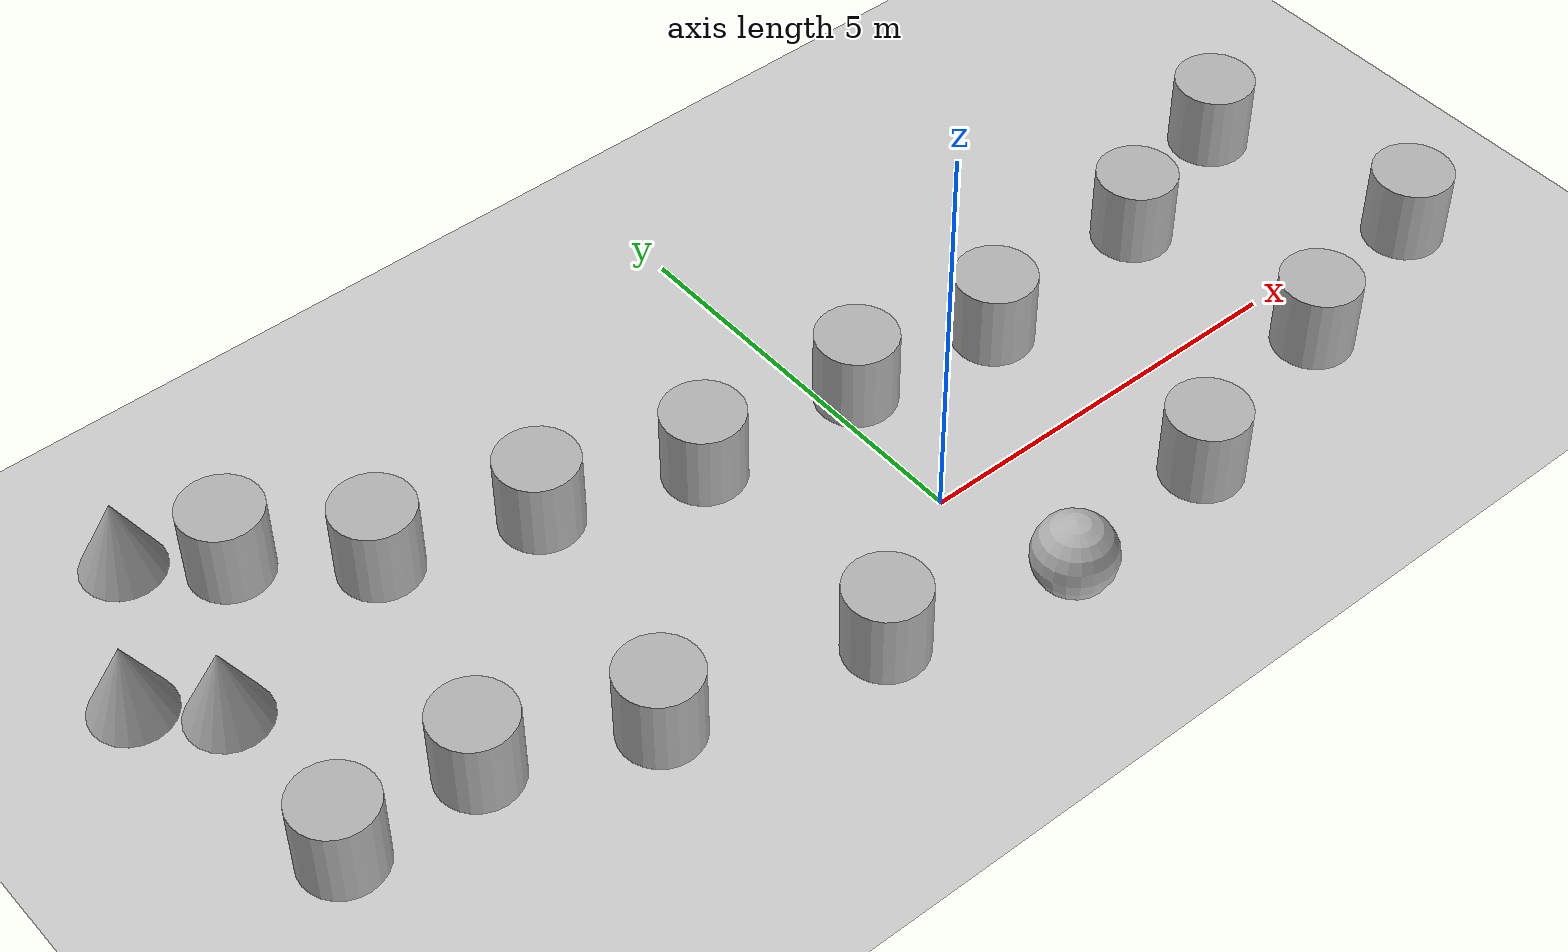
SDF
<sdf version='1.10'>
  <world name='empty'>
    <physics name='1ms' type='ignored'>
      <max_step_size>0.008</max_step_size>
      <real_time_factor>1</real_time_factor>
      <real_time_update_rate>1000</real_time_update_rate>
    </physics>
    <plugin name='gz::sim::systems::Physics' filename='gz-sim-physics-system'/>
    <plugin name='gz::sim::systems::UserCommands' filename='gz-sim-user-commands-system'/>
    <plugin name='gz::sim::systems::SceneBroadcaster' filename='gz-sim-scene-broadcaster-system'/>
    <plugin name='gz::sim::systems::Sensors' filename='gz-sim-sensors-system'>
      <render_engine>ogre2</render_engine>
    </plugin>
    <plugin name='gz::sim::systems::Contact' filename='gz-sim-contact-system'/>
    <gravity>0 0 -9.8000000000000007</gravity>
    <magnetic_field>5.5644999999999998e-06 2.2875799999999999e-05 -4.2388400000000002e-05</magnetic_field>
    <atmosphere type='adiabatic'/>
    <scene>
      <ambient>0.400000006 0.400000006 0.400000006 1</ambient>
      <background>0.699999988 0.699999988 0.699999988 1</background>
      <shadows>true</shadows>
    </scene>
    <model name='ground_plane'>
      <static>true</static>
      <link name='link'>
        <collision name='collision'>
          <geometry>
            <plane>
              <normal>0 0 1</normal>
              <size>100 100</size>
            </plane>
          </geometry>
          <surface>
            <friction>
              <ode/>
            </friction>
            <bounce/>
            <contact/>
          </surface>
        </collision>
        <visual name='visual'>
          <geometry>
            <plane>
              <normal>0 0 1</normal>
              <size>100 100</size>
            </plane>
          </geometry>
          <material>
            <ambient>0.800000012 0.800000012 0.800000012 1</ambient>
            <diffuse>0.800000012 0.800000012 0.800000012 1</diffuse>
            <specular>0.800000012 0.800000012 0.800000012 1</specular>
          </material>
        </visual>
        <pose>0 0 0 0 0 0</pose>
        <inertial>
          <pose>0 0 0 0 0 0</pose>
          <mass>1</mass>
          <inertia>
            <ixx>1</ixx>
            <ixy>0</ixy>
            <ixz>0</ixz>
            <iyy>1</iyy>
            <iyz>0</iyz>
            <izz>1</izz>
          </inertia>
        </inertial>
        <enable_wind>false</enable_wind>
      </link>
      <pose>0 0 0 0 0 0</pose>
      <self_collide>false</self_collide>
    </model>
    <model name='cylinder'>
      <pose>2.2499863101527513 1.595018920893533 0.49999947985226895 2.3881663558217525e-17 -1.5939603903663701e-17 4.5562128326621645e-19</pose>
      <link name='cylinder_link'>
        <inertial>
          <inertia>
            <ixx>0.14580000000000001</ixx>
            <ixy>0</ixy>
            <ixz>0</ixz>
            <iyy>0.14580000000000001</iyy>
            <iyz>0</iyz>
            <izz>0.125</izz>
          </inertia>
          <mass>1</mass>
          <pose>0 0 0 0 0 0</pose>
        </inertial>
        <collision name='cylinder_collision'>
          <geometry>
            <cylinder>
              <radius>0.5</radius>
              <length>1</length>
            </cylinder>
          </geometry>
          <surface>
            <friction>
              <ode/>
            </friction>
            <bounce/>
            <contact/>
          </surface>
        </collision>
        <visual name='cylinder_visual'>
          <geometry>
            <cylinder>
              <radius>0.5</radius>
              <length>1</length>
            </cylinder>
          </geometry>
          <material>
            <ambient>0.300000012 0.300000012 0.300000012 1</ambient>
            <diffuse>0.699999988 0.699999988 0.699999988 1</diffuse>
            <specular>1 1 1 1</specular>
          </material>
        </visual>
        <pose>0 0 0 0 0 0</pose>
        <enable_wind>false</enable_wind>
      </link>
      <static>false</static>
      <self_collide>false</self_collide>
    </model>
    <model name='cylinder_0'>
      <pose>0.36766696744877869 1.8762902755530619 0.49999947985226895 1.6217630503729115e-17 2.648696777790775e-17 1.1095014787820075e-18</pose>
      <link name='cylinder_link'>
        <inertial>
          <inertia>
            <ixx>0.14580000000000001</ixx>
            <ixy>0</ixy>
            <ixz>0</ixz>
            <iyy>0.14580000000000001</iyy>
            <iyz>0</iyz>
            <izz>0.125</izz>
          </inertia>
          <mass>1</mass>
          <pose>0 0 0 0 0 0</pose>
        </inertial>
        <collision name='cylinder_collision'>
          <geometry>
            <cylinder>
              <radius>0.5</radius>
              <length>1</length>
            </cylinder>
          </geometry>
          <surface>
            <friction>
              <ode/>
            </friction>
            <bounce/>
            <contact/>
          </surface>
        </collision>
        <visual name='cylinder_visual'>
          <geometry>
            <cylinder>
              <radius>0.5</radius>
              <length>1</length>
            </cylinder>
          </geometry>
          <material>
            <ambient>0.300000012 0.300000012 0.300000012 1</ambient>
            <diffuse>0.699999988 0.699999988 0.699999988 1</diffuse>
            <specular>1 1 1 1</specular>
          </material>
        </visual>
        <pose>0 0 0 0 0 0</pose>
        <enable_wind>false</enable_wind>
      </link>
      <static>false</static>
      <self_collide>false</self_collide>
    </model>
    <model name='cylinder_1'>
      <pose>-1.7348720169636582 2.0484545725794123 0.49999947985226895 -7.8166408572051911e-18 -5.1302124631653502e-18 -1.5609185590258706e-18</pose>
      <link name='cylinder_link'>
        <inertial>
          <inertia>
            <ixx>0.14580000000000001</ixx>
            <ixy>0</ixy>
            <ixz>0</ixz>
            <iyy>0.14580000000000001</iyy>
            <iyz>0</iyz>
            <izz>0.125</izz>
          </inertia>
          <mass>1</mass>
          <pose>0 0 0 0 0 0</pose>
        </inertial>
        <collision name='cylinder_collision'>
          <geometry>
            <cylinder>
              <radius>0.5</radius>
              <length>1</length>
            </cylinder>
          </geometry>
          <surface>
            <friction>
              <ode/>
            </friction>
            <bounce/>
            <contact/>
          </surface>
        </collision>
        <visual name='cylinder_visual'>
          <geometry>
            <cylinder>
              <radius>0.5</radius>
              <length>1</length>
            </cylinder>
          </geometry>
          <material>
            <ambient>0.300000012 0.300000012 0.300000012 1</ambient>
            <diffuse>0.699999988 0.699999988 0.699999988 1</diffuse>
            <specular>1 1 1 1</specular>
          </material>
        </visual>
        <pose>0 0 0 0 0 0</pose>
        <enable_wind>false</enable_wind>
      </link>
      <static>false</static>
      <self_collide>false</self_collide>
    </model>
    <model name='cylinder_2'>
      <pose>4.7557521429729688 1.8144450784627419 0.49999963081747861 1.0743487045557161e-10 7.9476920442039657e-11 1.2790752321164944e-08</pose>
      <link name='cylinder_link'>
        <inertial>
          <inertia>
            <ixx>0.14580000000000001</ixx>
            <ixy>0</ixy>
            <ixz>0</ixz>
            <iyy>0.14580000000000001</iyy>
            <iyz>0</iyz>
            <izz>0.125</izz>
          </inertia>
          <mass>1</mass>
          <pose>0 0 0 0 0 0</pose>
        </inertial>
        <collision name='cylinder_collision'>
          <geometry>
            <cylinder>
              <radius>0.5</radius>
              <length>1</length>
            </cylinder>
          </geometry>
          <surface>
            <friction>
              <ode/>
            </friction>
            <bounce/>
            <contact/>
          </surface>
        </collision>
        <visual name='cylinder_visual'>
          <geometry>
            <cylinder>
              <radius>0.5</radius>
              <length>1</length>
            </cylinder>
          </geometry>
          <material>
            <ambient>0.300000012 0.300000012 0.300000012 1</ambient>
            <diffuse>0.699999988 0.699999988 0.699999988 1</diffuse>
            <specular>1 1 1 1</specular>
          </material>
        </visual>
        <pose>0 0 0 0 0 0</pose>
        <enable_wind>false</enable_wind>
      </link>
      <static>false</static>
      <self_collide>false</self_collide>
    </model>
    <model name='cylinder_3'>
      <pose>-3.5658479179048932 2.656371369886072 0.49999947985226889 1.4250658289572858e-17 -3.6798342673145309e-18 -1.5223656363069825e-18</pose>
      <link name='cylinder_link'>
        <inertial>
          <inertia>
            <ixx>0.14580000000000001</ixx>
            <ixy>0</ixy>
            <ixz>0</ixz>
            <iyy>0.14580000000000001</iyy>
            <iyz>0</iyz>
            <izz>0.125</izz>
          </inertia>
          <mass>1</mass>
          <pose>0 0 0 0 0 0</pose>
        </inertial>
        <collision name='cylinder_collision'>
          <geometry>
            <cylinder>
              <radius>0.5</radius>
              <length>1</length>
            </cylinder>
          </geometry>
          <surface>
            <friction>
              <ode/>
            </friction>
            <bounce/>
            <contact/>
          </surface>
        </collision>
        <visual name='cylinder_visual'>
          <geometry>
            <cylinder>
              <radius>0.5</radius>
              <length>1</length>
            </cylinder>
          </geometry>
          <material>
            <ambient>0.300000012 0.300000012 0.300000012 1</ambient>
            <diffuse>0.699999988 0.699999988 0.699999988 1</diffuse>
            <specular>1 1 1 1</specular>
          </material>
        </visual>
        <pose>0 0 0 0 0 0</pose>
        <enable_wind>false</enable_wind>
      </link>
      <static>false</static>
      <self_collide>false</self_collide>
    </model>
    <model name='cylinder_4'>
      <pose>-4.3958162363230411 -0.52994371349131675 0.49999947985226895 3.3547511201492961e-18 -1.193086293552384e-17 -7.2278699720692598e-19</pose>
      <link name='cylinder_link'>
        <inertial>
          <inertia>
            <ixx>0.14580000000000001</ixx>
            <ixy>0</ixy>
            <ixz>0</ixz>
            <iyy>0.14580000000000001</iyy>
            <iyz>0</iyz>
            <izz>0.125</izz>
          </inertia>
          <mass>1</mass>
          <pose>0 0 0 0 0 0</pose>
        </inertial>
        <collision name='cylinder_collision'>
          <geometry>
            <cylinder>
              <radius>0.5</radius>
              <length>1</length>
            </cylinder>
          </geometry>
          <surface>
            <friction>
              <ode/>
            </friction>
            <bounce/>
            <contact/>
          </surface>
        </collision>
        <visual name='cylinder_visual'>
          <geometry>
            <cylinder>
              <radius>0.5</radius>
              <length>1</length>
            </cylinder>
          </geometry>
          <material>
            <ambient>0.300000012 0.300000012 0.300000012 1</ambient>
            <diffuse>0.699999988 0.699999988 0.699999988 1</diffuse>
            <specular>1 1 1 1</specular>
          </material>
        </visual>
        <pose>0 0 0 0 0 0</pose>
        <enable_wind>false</enable_wind>
      </link>
      <static>false</static>
      <self_collide>false</self_collide>
    </model>
    <model name='cylinder_5'>
      <pose>-1.8713308214083781 -1.1876177281501499 0.49999947985226895 -3.8829490701928059e-18 2.6102993994865445e-18 8.7112110690941823e-19</pose>
      <link name='cylinder_link'>
        <inertial>
          <inertia>
            <ixx>0.14580000000000001</ixx>
            <ixy>0</ixy>
            <ixz>0</ixz>
            <iyy>0.14580000000000001</iyy>
            <iyz>0</iyz>
            <izz>0.125</izz>
          </inertia>
          <mass>1</mass>
          <pose>0 0 0 0 0 0</pose>
        </inertial>
        <collision name='cylinder_collision'>
          <geometry>
            <cylinder>
              <radius>0.5</radius>
              <length>1</length>
            </cylinder>
          </geometry>
          <surface>
            <friction>
              <ode/>
            </friction>
            <bounce/>
            <contact/>
          </surface>
        </collision>
        <visual name='cylinder_visual'>
          <geometry>
            <cylinder>
              <radius>0.5</radius>
              <length>1</length>
            </cylinder>
          </geometry>
          <material>
            <ambient>0.300000012 0.300000012 0.300000012 1</ambient>
            <diffuse>0.699999988 0.699999988 0.699999988 1</diffuse>
            <specular>1 1 1 1</specular>
          </material>
        </visual>
        <pose>0 0 0 0 0 0</pose>
        <enable_wind>false</enable_wind>
      </link>
      <static>false</static>
      <self_collide>false</self_collide>
    </model>
    <model name='sphere'>
      <pose>0.27550967224271972 -1.8154389348107967 0.49999999647085919 0 0 0</pose>
      <link name='sphere_link'>
        <inertial>
          <inertia>
            <ixx>0.10000000000000001</ixx>
            <ixy>0</ixy>
            <ixz>0</ixz>
            <iyy>0.10000000000000001</iyy>
            <iyz>0</iyz>
            <izz>0.10000000000000001</izz>
          </inertia>
          <mass>1</mass>
          <pose>0 0 0 0 0 0</pose>
        </inertial>
        <collision name='sphere_collision'>
          <geometry>
            <sphere>
              <radius>0.5</radius>
            </sphere>
          </geometry>
          <surface>
            <friction>
              <ode/>
            </friction>
            <bounce/>
            <contact/>
          </surface>
        </collision>
        <visual name='sphere_visual'>
          <geometry>
            <sphere>
              <radius>0.5</radius>
            </sphere>
          </geometry>
          <material>
            <ambient>0.300000012 0.300000012 0.300000012 1</ambient>
            <diffuse>0.699999988 0.699999988 0.699999988 1</diffuse>
            <specular>1 1 1 1</specular>
          </material>
        </visual>
        <pose>0 0 0 0 0 0</pose>
        <enable_wind>false</enable_wind>
      </link>
      <static>false</static>
      <self_collide>false</self_collide>
    </model>
    <model name='cylinder_6'>
      <pose>2.5635178272517898 -1.5293029172495756 0.49999947985226895 -9.662447727530514e-18 -8.6795932505375381e-18 -8.4847856208733708e-19</pose>
      <link name='cylinder_link'>
        <inertial>
          <inertia>
            <ixx>0.14580000000000001</ixx>
            <ixy>0</ixy>
            <ixz>0</ixz>
            <iyy>0.14580000000000001</iyy>
            <iyz>0</iyz>
            <izz>0.125</izz>
          </inertia>
          <mass>1</mass>
          <pose>0 0 0 0 0 0</pose>
        </inertial>
        <collision name='cylinder_collision'>
          <geometry>
            <cylinder>
              <radius>0.5</radius>
              <length>1</length>
            </cylinder>
          </geometry>
          <surface>
            <friction>
              <ode/>
            </friction>
            <bounce/>
            <contact/>
          </surface>
        </collision>
        <visual name='cylinder_visual'>
          <geometry>
            <cylinder>
              <radius>0.5</radius>
              <length>1</length>
            </cylinder>
          </geometry>
          <material>
            <ambient>0.300000012 0.300000012 0.300000012 1</ambient>
            <diffuse>0.699999988 0.699999988 0.699999988 1</diffuse>
            <specular>1 1 1 1</specular>
          </material>
        </visual>
        <pose>0 0 0 0 0 0</pose>
        <enable_wind>false</enable_wind>
      </link>
      <static>false</static>
      <self_collide>false</self_collide>
    </model>
    <model name='cylinder_7'>
      <pose>5.0817338942821948 -0.87209074524719854 0.49999947985226895 -2.9489444128448754e-17 -8.6688149438977794e-18 -5.5638481062966557e-19</pose>
      <link name='cylinder_link'>
        <inertial>
          <inertia>
            <ixx>0.14580000000000001</ixx>
            <ixy>0</ixy>
            <ixz>0</ixz>
            <iyy>0.14580000000000001</iyy>
            <iyz>0</iyz>
            <izz>0.125</izz>
          </inertia>
          <mass>1</mass>
          <pose>0 0 0 0 0 0</pose>
        </inertial>
        <collision name='cylinder_collision'>
          <geometry>
            <cylinder>
              <radius>0.5</radius>
              <length>1</length>
            </cylinder>
          </geometry>
          <surface>
            <friction>
              <ode/>
            </friction>
            <bounce/>
            <contact/>
          </surface>
        </collision>
        <visual name='cylinder_visual'>
          <geometry>
            <cylinder>
              <radius>0.5</radius>
              <length>1</length>
            </cylinder>
          </geometry>
          <material>
            <ambient>0.300000012 0.300000012 0.300000012 1</ambient>
            <diffuse>0.699999988 0.699999988 0.699999988 1</diffuse>
            <specular>1 1 1 1</specular>
          </material>
        </visual>
        <pose>0 0 0 0 0 0</pose>
        <enable_wind>false</enable_wind>
      </link>
      <static>false</static>
      <self_collide>false</self_collide>
    </model>
    <model name='cylinder_8'>
      <pose>6.7330601783698292 2.4538196059467383 0.49999947985226895 4.753500480616779e-19 2.5544602729384372e-18 -1.6751868155691134e-18</pose>
      <link name='cylinder_link'>
        <inertial>
          <inertia>
            <ixx>0.14580000000000001</ixx>
            <ixy>0</ixy>
            <ixz>0</ixz>
            <iyy>0.14580000000000001</iyy>
            <iyz>0</iyz>
            <izz>0.125</izz>
          </inertia>
          <mass>1</mass>
          <pose>0 0 0 0 0 0</pose>
        </inertial>
        <collision name='cylinder_collision'>
          <geometry>
            <cylinder>
              <radius>0.5</radius>
              <length>1</length>
            </cylinder>
          </geometry>
          <surface>
            <friction>
              <ode/>
            </friction>
            <bounce/>
            <contact/>
          </surface>
        </collision>
        <visual name='cylinder_visual'>
          <geometry>
            <cylinder>
              <radius>0.5</radius>
              <length>1</length>
            </cylinder>
          </geometry>
          <material>
            <ambient>0.300000012 0.300000012 0.300000012 1</ambient>
            <diffuse>0.699999988 0.699999988 0.699999988 1</diffuse>
            <specular>1 1 1 1</specular>
          </material>
        </visual>
        <pose>0 0 0 0 0 0</pose>
        <enable_wind>false</enable_wind>
      </link>
      <static>false</static>
      <self_collide>false</self_collide>
    </model>
    <model name='cylinder_9'>
      <pose>7.3102340665665118 -0.28504944576133551 0.49999947985226895 6.7441825128584643e-18 -3.5718128849770119e-17 -2.7708671495614089e-18</pose>
      <link name='cylinder_link'>
        <inertial>
          <inertia>
            <ixx>0.14580000000000001</ixx>
            <ixy>0</ixy>
            <ixz>0</ixz>
            <iyy>0.14580000000000001</iyy>
            <iyz>0</iyz>
            <izz>0.125</izz>
          </inertia>
          <mass>1</mass>
          <pose>0 0 0 0 0 0</pose>
        </inertial>
        <collision name='cylinder_collision'>
          <geometry>
            <cylinder>
              <radius>0.5</radius>
              <length>1</length>
            </cylinder>
          </geometry>
          <surface>
            <friction>
              <ode/>
            </friction>
            <bounce/>
            <contact/>
          </surface>
        </collision>
        <visual name='cylinder_visual'>
          <geometry>
            <cylinder>
              <radius>0.5</radius>
              <length>1</length>
            </cylinder>
          </geometry>
          <material>
            <ambient>0.300000012 0.300000012 0.300000012 1</ambient>
            <diffuse>0.699999988 0.699999988 0.699999988 1</diffuse>
            <specular>1 1 1 1</specular>
          </material>
        </visual>
        <pose>0 0 0 0 0 0</pose>
        <enable_wind>false</enable_wind>
      </link>
      <static>false</static>
      <self_collide>false</self_collide>
    </model>
    <model name='cylinder_10'>
      <pose>-5.3310831631932167 3.228119608909096 0.49999947985226895 1.4700845370700282e-18 -1.9639085388973682e-17 1.3511071162890374e-18</pose>
      <link name='cylinder_link'>
        <inertial>
          <inertia>
            <ixx>0.14580000000000001</ixx>
            <ixy>0</ixy>
            <ixz>0</ixz>
            <iyy>0.14580000000000001</iyy>
            <iyz>0</iyz>
            <izz>0.125</izz>
          </inertia>
          <mass>1</mass>
          <pose>0 0 0 0 0 0</pose>
        </inertial>
        <collision name='cylinder_collision'>
          <geometry>
            <cylinder>
              <radius>0.5</radius>
              <length>1</length>
            </cylinder>
          </geometry>
          <surface>
            <friction>
              <ode/>
            </friction>
            <bounce/>
            <contact/>
          </surface>
        </collision>
        <visual name='cylinder_visual'>
          <geometry>
            <cylinder>
              <radius>0.5</radius>
              <length>1</length>
            </cylinder>
          </geometry>
          <material>
            <ambient>0.300000012 0.300000012 0.300000012 1</ambient>
            <diffuse>0.699999988 0.699999988 0.699999988 1</diffuse>
            <specular>1 1 1 1</specular>
          </material>
        </visual>
        <pose>0 0 0 0 0 0</pose>
        <enable_wind>false</enable_wind>
      </link>
      <static>false</static>
      <self_collide>false</self_collide>
    </model>
    <model name='cylinder_11'>
      <pose>-6.1775411929814226 0.22882666130358609 0.49999947985226895 -1.9854328396711854e-20 5.1350516680870629e-17 -2.4656546098509811e-19</pose>
      <link name='cylinder_link'>
        <inertial>
          <inertia>
            <ixx>0.14580000000000001</ixx>
            <ixy>0</ixy>
            <ixz>0</ixz>
            <iyy>0.14580000000000001</iyy>
            <iyz>0</iyz>
            <izz>0.125</izz>
          </inertia>
          <mass>1</mass>
          <pose>0 0 0 0 0 0</pose>
        </inertial>
        <collision name='cylinder_collision'>
          <geometry>
            <cylinder>
              <radius>0.5</radius>
              <length>1</length>
            </cylinder>
          </geometry>
          <surface>
            <friction>
              <ode/>
            </friction>
            <bounce/>
            <contact/>
          </surface>
        </collision>
        <visual name='cylinder_visual'>
          <geometry>
            <cylinder>
              <radius>0.5</radius>
              <length>1</length>
            </cylinder>
          </geometry>
          <material>
            <ambient>0.300000012 0.300000012 0.300000012 1</ambient>
            <diffuse>0.699999988 0.699999988 0.699999988 1</diffuse>
            <specular>1 1 1 1</specular>
          </material>
        </visual>
        <pose>0 0 0 0 0 0</pose>
        <enable_wind>false</enable_wind>
      </link>
      <static>false</static>
      <self_collide>false</self_collide>
    </model>
    <model name='cylinder_12'>
      <pose>-6.5877250560172129 4.2629606443163386 0.49999947985226895 2.8589312053142394e-17 -1.6199233473502986e-17 -2.9936345083686549e-19</pose>
      <link name='cylinder_link'>
        <inertial>
          <inertia>
            <ixx>0.14580000000000001</ixx>
            <ixy>0</ixy>
            <ixz>0</ixz>
            <iyy>0.14580000000000001</iyy>
            <iyz>0</iyz>
            <izz>0.125</izz>
          </inertia>
          <mass>1</mass>
          <pose>0 0 0 0 0 0</pose>
        </inertial>
        <collision name='cylinder_collision'>
          <geometry>
            <cylinder>
              <radius>0.5</radius>
              <length>1</length>
            </cylinder>
          </geometry>
          <surface>
            <friction>
              <ode/>
            </friction>
            <bounce/>
            <contact/>
          </surface>
        </collision>
        <visual name='cylinder_visual'>
          <geometry>
            <cylinder>
              <radius>0.5</radius>
              <length>1</length>
            </cylinder>
          </geometry>
          <material>
            <ambient>0.300000012 0.300000012 0.300000012 1</ambient>
            <diffuse>0.699999988 0.699999988 0.699999988 1</diffuse>
            <specular>1 1 1 1</specular>
          </material>
        </visual>
        <pose>0 0 0 0 0 0</pose>
        <enable_wind>false</enable_wind>
      </link>
      <static>false</static>
      <self_collide>false</self_collide>
    </model>
    <model name='cylinder_13'>
      <pose>-7.8514977670905264 0.2394723625738866 0.49999947985226895 2.0520865764804345e-17 -1.0066658997535138e-17 -1.3446290578085051e-18</pose>
      <link name='cylinder_link'>
        <inertial>
          <inertia>
            <ixx>0.14580000000000001</ixx>
            <ixy>0</ixy>
            <ixz>0</ixz>
            <iyy>0.14580000000000001</iyy>
            <iyz>0</iyz>
            <izz>0.125</izz>
          </inertia>
          <mass>1</mass>
          <pose>0 0 0 0 0 0</pose>
        </inertial>
        <collision name='cylinder_collision'>
          <geometry>
            <cylinder>
              <radius>0.5</radius>
              <length>1</length>
            </cylinder>
          </geometry>
          <surface>
            <friction>
              <ode/>
            </friction>
            <bounce/>
            <contact/>
          </surface>
        </collision>
        <visual name='cylinder_visual'>
          <geometry>
            <cylinder>
              <radius>0.5</radius>
              <length>1</length>
            </cylinder>
          </geometry>
          <material>
            <ambient>0.300000012 0.300000012 0.300000012 1</ambient>
            <diffuse>0.699999988 0.699999988 0.699999988 1</diffuse>
            <specular>1 1 1 1</specular>
          </material>
        </visual>
        <pose>0 0 0 0 0 0</pose>
        <enable_wind>false</enable_wind>
      </link>
      <static>false</static>
      <self_collide>false</self_collide>
    </model>
    <model name='cone'>
      <pose>-7.7226615119287194 2.5437367127581694 0.49999899751292431 1.2761174263790043e-06 -1.2767596972182467e-06 1.3877764130654086e-11</pose>
      <link name='cone_link'>
        <inertial>
          <inertia>
            <ixx>0.074999999999999997</ixx>
            <ixy>0</ixy>
            <ixz>0</ixz>
            <iyy>0.074999999999999997</iyy>
            <iyz>0</iyz>
            <izz>0.074999999999999997</izz>
          </inertia>
          <mass>1</mass>
          <pose>0 0 0 0 0 0</pose>
        </inertial>
        <collision name='cone_collision'>
          <geometry>
            <cone>
              <radius>0.5</radius>
              <length>1</length>
            </cone>
          </geometry>
          <surface>
            <friction>
              <ode/>
            </friction>
            <bounce/>
            <contact/>
          </surface>
        </collision>
        <visual name='cone_visual'>
          <geometry>
            <cone>
              <radius>0.5</radius>
              <length>1</length>
            </cone>
          </geometry>
          <material>
            <ambient>0.300000012 0.300000012 0.300000012 1</ambient>
            <diffuse>0.699999988 0.699999988 0.699999988 1</diffuse>
            <specular>1 1 1 1</specular>
          </material>
        </visual>
        <pose>0 0 0 0 0 0</pose>
        <enable_wind>false</enable_wind>
      </link>
      <static>false</static>
      <self_collide>false</self_collide>
    </model>
    <model name='cone_0'>
      <pose>-7.475088321585754 5.0558206590891812 0.49999899751292448 1.2761174265809319e-06 -1.2767596965656311e-06 1.3262711118239792e-11</pose>
      <link name='cone_link'>
        <inertial>
          <inertia>
            <ixx>0.074999999999999997</ixx>
            <ixy>0</ixy>
            <ixz>0</ixz>
            <iyy>0.074999999999999997</iyy>
            <iyz>0</iyz>
            <izz>0.074999999999999997</izz>
          </inertia>
          <mass>1</mass>
          <pose>0 0 0 0 0 0</pose>
        </inertial>
        <collision name='cone_collision'>
          <geometry>
            <cone>
              <radius>0.5</radius>
              <length>1</length>
            </cone>
          </geometry>
          <surface>
            <friction>
              <ode/>
            </friction>
            <bounce/>
            <contact/>
          </surface>
        </collision>
        <visual name='cone_visual'>
          <geometry>
            <cone>
              <radius>0.5</radius>
              <length>1</length>
            </cone>
          </geometry>
          <material>
            <ambient>0.300000012 0.300000012 0.300000012 1</ambient>
            <diffuse>0.699999988 0.699999988 0.699999988 1</diffuse>
            <specular>1 1 1 1</specular>
          </material>
        </visual>
        <pose>0 0 0 0 0 0</pose>
        <enable_wind>false</enable_wind>
      </link>
      <static>false</static>
      <self_collide>false</self_collide>
    </model>
    <model name='cone_1'>
      <pose>-8.4467164356066498 3.2616503524494989 0.49999899751403815 1.2761590041920826e-06 -1.2767166827145912e-06 1.3000990718665003e-11</pose>
      <link name='cone_link'>
        <inertial>
          <inertia>
            <ixx>0.074999999999999997</ixx>
            <ixy>0</ixy>
            <ixz>0</ixz>
            <iyy>0.074999999999999997</iyy>
            <iyz>0</iyz>
            <izz>0.074999999999999997</izz>
          </inertia>
          <mass>1</mass>
          <pose>0 0 0 0 0 0</pose>
        </inertial>
        <collision name='cone_collision'>
          <geometry>
            <cone>
              <radius>0.5</radius>
              <length>1</length>
            </cone>
          </geometry>
          <surface>
            <friction>
              <ode/>
            </friction>
            <bounce/>
            <contact/>
          </surface>
        </collision>
        <visual name='cone_visual'>
          <geometry>
            <cone>
              <radius>0.5</radius>
              <length>1</length>
            </cone>
          </geometry>
          <material>
            <ambient>0.300000012 0.300000012 0.300000012 1</ambient>
            <diffuse>0.699999988 0.699999988 0.699999988 1</diffuse>
            <specular>1 1 1 1</specular>
          </material>
        </visual>
        <pose>0 0 0 0 0 0</pose>
        <enable_wind>false</enable_wind>
      </link>
      <static>false</static>
      <self_collide>false</self_collide>
    </model>
    <light name='sun' type='directional'>
      <pose>0 0 10 0 0 0</pose>
      <cast_shadows>true</cast_shadows>
      <intensity>1</intensity>
      <direction>-0.5 0.10000000000000001 -0.90000000000000002</direction>
      <diffuse>0.800000012 0.800000012 0.800000012 1</diffuse>
      <specular>0.200000003 0.200000003 0.200000003 1</specular>
      <attenuation>
        <range>1000</range>
        <linear>0.01</linear>
        <constant>0.90000000000000002</constant>
        <quadratic>0.001</quadratic>
      </attenuation>
      <spot>
        <inner_angle>0</inner_angle>
        <outer_angle>0</outer_angle>
        <falloff>0</falloff>
      </spot>
    </light>
  </world>
</sdf>
